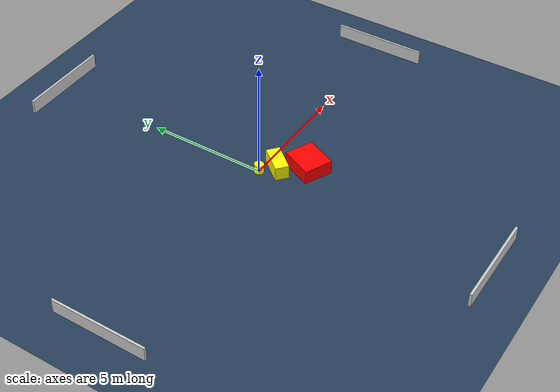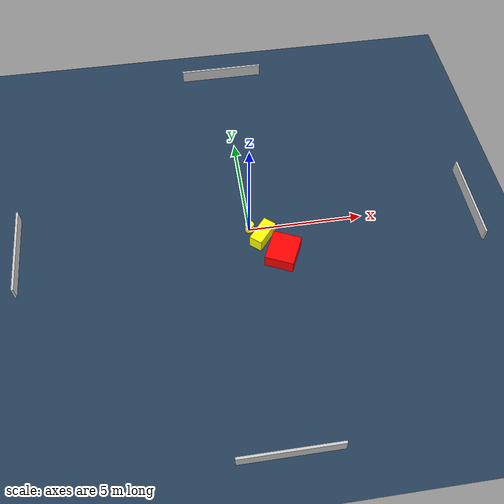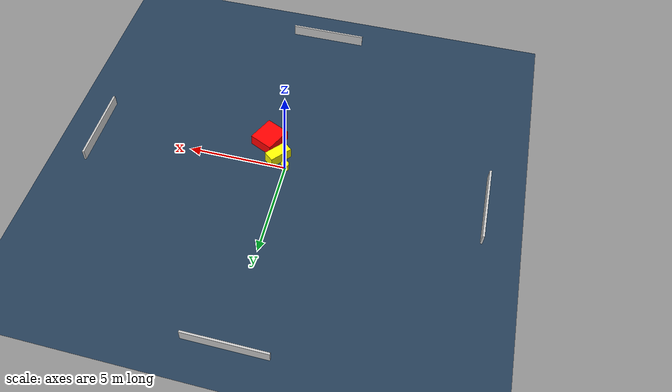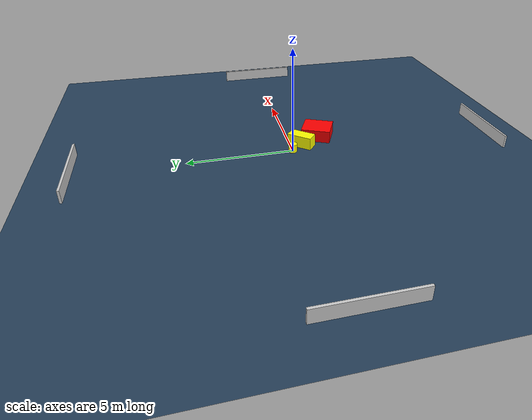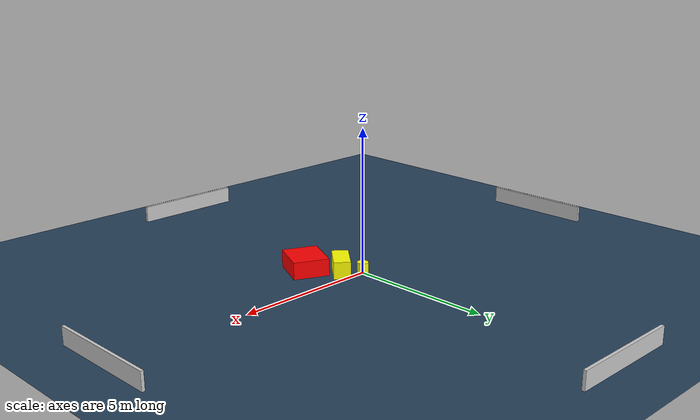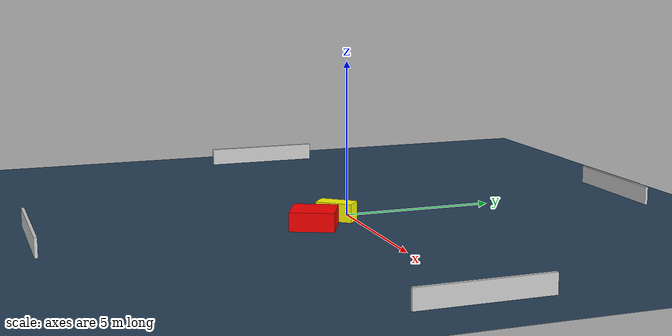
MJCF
<?xml version="1.0" ?>
<mujoco model="generated_environment">
  <option timestep="0.01" integrator="RK4" cone="elliptic"/>
  <default>
    <geom density="1"/>
  </default>
  <asset>
    <texture builtin="gradient" height="3072" name="skybox" rgb1="0.3 0.5 0.7" rgb2="0 0 0" type="skybox" width="512"/>
    <texture builtin="checker" height="300" name="groundplane" rgb1="0.2 0.3 0.4" rgb2="0.1 0.2 0.3" type="2d" width="300"/>
    <material name="groundplane" reflectance="0.2" texrepeat="5 5" texture="groundplane"/>
  </asset>
  <worldbody>
    <light dir="0 0 -1" directional="true" pos="0 0 1.5"/>
    <geom condim="3" friction="0.5 0.005 0.001" material="groundplane" name="floor" pos="0 0 0" size="0 0 0.05" type="plane"/>
    <body name="walls">
      <geom name="wall_1" condim="4" pos="-10.0 0.0 0.3" rgba="0.800000011920929 0.800000011920929 0.800000011920929 1.0" size="0.05 2.0 0.3" type="box"/>
      <geom name="wall_2" condim="4" pos="10.0 0.0 0.3" rgba="0.800000011920929 0.800000011920929 0.800000011920929 1.0" size="0.05 2.0 0.3" type="box"/>
      <geom name="wall_3" condim="4" pos="0.0 -10.0 0.3" rgba="0.800000011920929 0.800000011920929 0.800000011920929 1.0" size="2.0 0.05 0.3" type="box"/>
      <geom name="wall_4" condim="4" pos="0.0 10.0 0.3" rgba="0.800000011920929 0.800000011920929 0.800000011920929 1.0" size="2.0 0.05 0.3" type="box"/>
    </body>
    <body name="robot">
      <joint name="joint_x" type="slide" pos="0 0 0" axis="1 0 0"/>
      <joint name="joint_y" type="slide" pos="0 0 0" axis="0 1 0"/>
      <geom name="robot" type="cylinder" pos="0.0 0.0 0.2" size="0.2 0.2 0.0" mass="5.0" friction="1.0 0.005 0.0001" condim="4" rgba="1.0 1.0 0.0 1.0"/>
    </body>
    <body name="obstacle_1_movable">
      <geom name="obstacle_1_movable" condim="4" pos="0.5000186206195469 -0.540160456987646 0.3" euler="0 0 230.10489294816767" friction="0.0 0.005 0.001" rgba="1.0 1.0 0.0 1.0" size="0.603554447077239 0.28876223408201035 0.3" type="box" mass="0.1"/>
      <joint type="free"/>
    </body>
    <body name="obstacle_2_static">
      <geom name="obstacle_2_static" condim="4" pos="1.2204537850026338 -1.5383510087427708 0.3" euler="0 0 244.99827859954806" friction="0.0 0.005 0.001" rgba="1.0 0.0 0.0 1.0" size="0.7066366420975294 0.6214759743528844 0.3" type="box"/>
    </body>
  </worldbody>
  <actuator>
    <motor name="actuator_x" joint="joint_x" gear="1" ctrlrange="-1 1"/>
    <motor name="actuator_y" joint="joint_y" gear="1" ctrlrange="-1 1"/>
  </actuator>
</mujoco>
